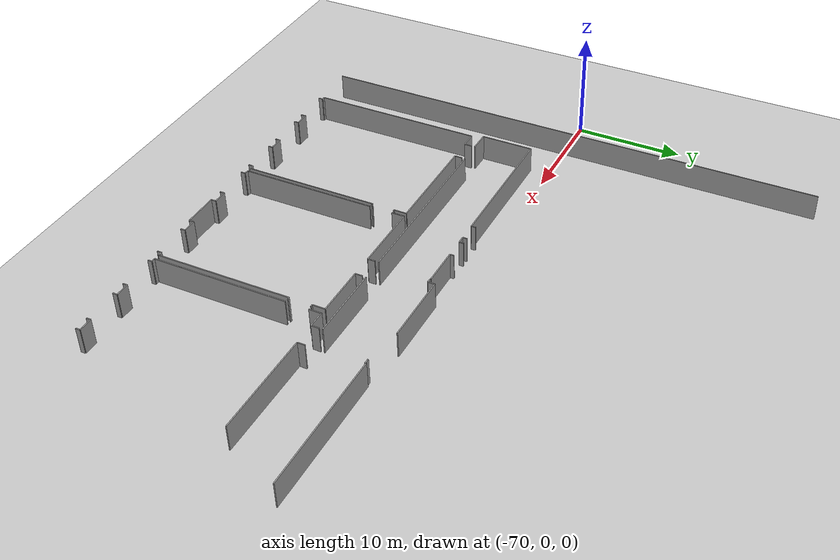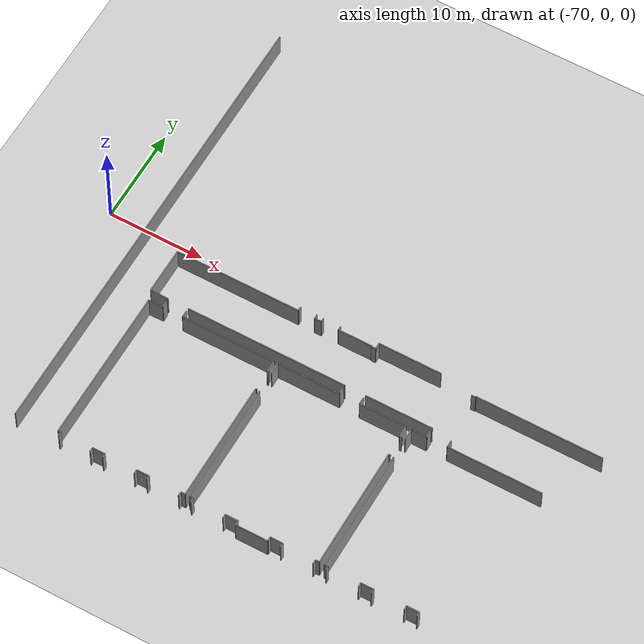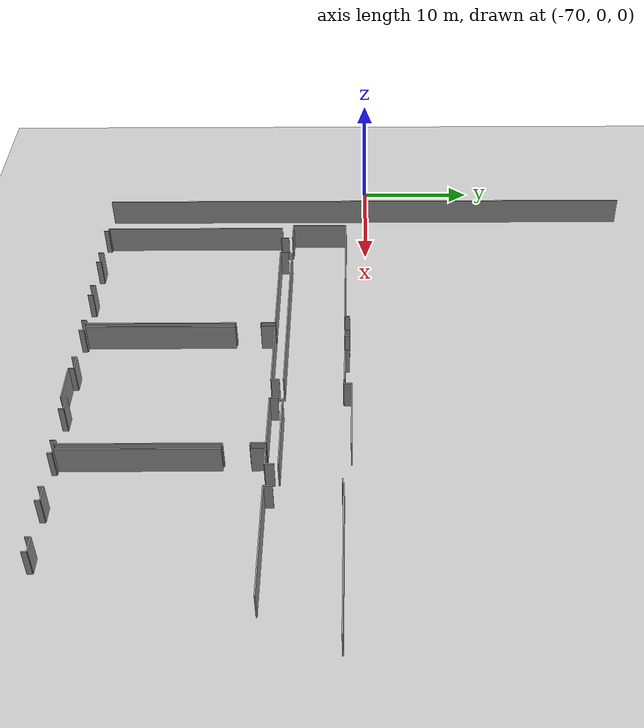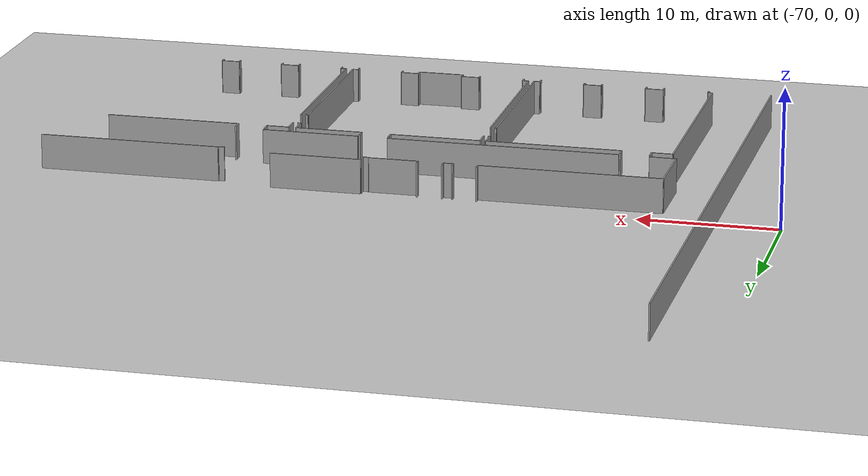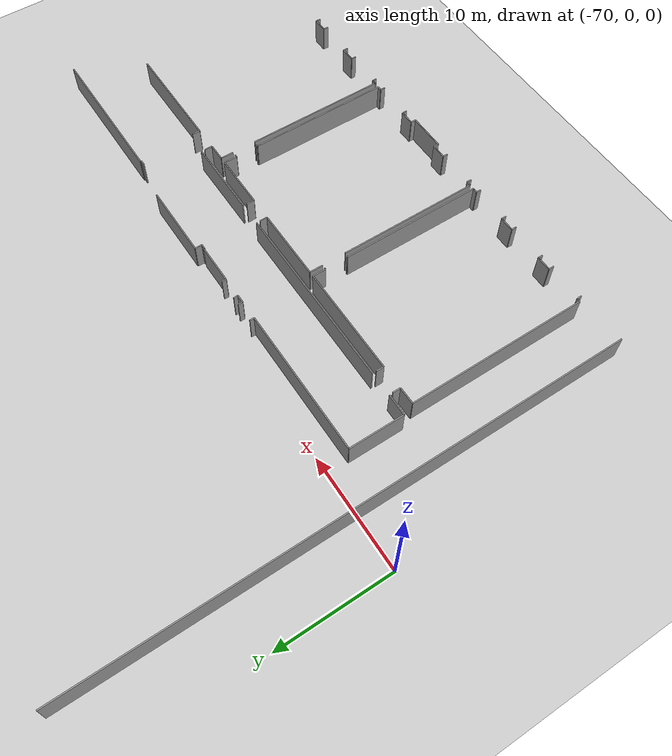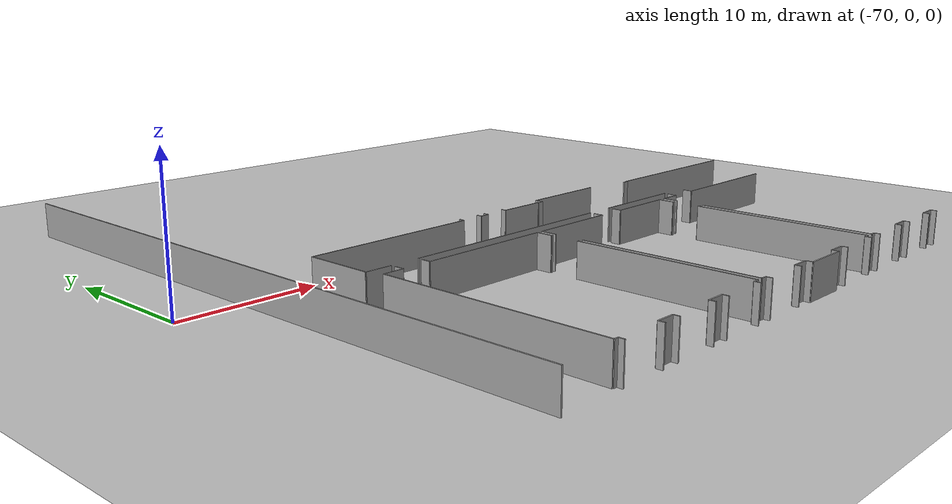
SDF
<sdf version="1.6">
 <world name="default">
  <model name="ground_plane">
   <static>1</static>
   <link name="link">
    <collision name="collision">
     <geometry><plane><normal>0 0 1</normal><size>100 100</size></plane></geometry>
     <surface><friction><ode><mu>100</mu><mu2>50</mu2></ode></friction></surface>
    </collision>
    <visual name="visual">
     <cast_shadows>0</cast_shadows>
     <geometry><plane><normal>0 0 1</normal><size>100 100</size></plane></geometry>
     <material>
      <script><uri>file://media/materials/scripts/gazebo.material</uri><name>Gazebo/Grey</name></script>
     </material>
    </visual>
   </link>
  </model>
  <model name="0510032196_A_40_1_104">
   <static>1</static>
   <link name="Wall_256">
    <collision name="Wall_256_Collision">
     <geometry><box><size>12.6980072187 0.1 2.5</size></box></geometry>
     <pose>6.34900360937 0 1.25 0 0 0</pose>
    </collision>
    <visual name="Wall_256_Visual">
     <pose>6.34900360937 0 1.25 0 0 0</pose>
     <geometry><box><size>12.6980072187 0.1 2.5</size></box></geometry>
     <material>
      <script><uri>file://media/materials/scripts/gazebo.material</uri><name>Gazebo/Grey</name></script>
      <ambient>1 1 1 1</ambient>
     </material>
    </visual>
    <pose>32.1738854151 -47.9350312643 0 0 0 1.57079632679</pose>
   </link>
   <link name="Wall_257">
    <collision name="Wall_257_Collision">
     <geometry><box><size>1.16033755274 0.1 2.5</size></box></geometry>
     <pose>0.580168776371 0 1.25 0 0 0</pose>
    </collision>
    <visual name="Wall_257_Visual">
     <pose>0.580168776371 0 1.25 0 0 0</pose>
     <geometry><box><size>1.16033755274 0.1 2.5</size></box></geometry>
     <material>
      <script><uri>file://media/materials/scripts/gazebo.material</uri><name>Gazebo/Grey</name></script>
      <ambient>1 1 1 1</ambient>
     </material>
    </visual>
    <pose>32.1738854151 -33.0599613644 0 0 0 1.57079632679</pose>
   </link>
   <link name="Wall_258">
    <collision name="Wall_258_Collision">
     <geometry><box><size>1.59625845153 0.1 2.5</size></box></geometry>
     <pose>0.798129225764 0 1.25 0 0 0</pose>
    </collision>
    <visual name="Wall_258_Visual">
     <pose>0.798129225764 0 1.25 0 0 0</pose>
     <geometry><box><size>1.59625845153 0.1 2.5</size></box></geometry>
     <material>
      <script><uri>file://media/materials/scripts/gazebo.material</uri><name>Gazebo/Grey</name></script>
      <ambient>1 1 1 1</ambient>
     </material>
    </visual>
    <pose>32.1738854151 -31.8996238117 0 0 0 0.0</pose>
   </link>
   <link name="Wall_259">
    <collision name="Wall_259_Collision">
     <geometry><box><size>0.729500279599 0.1 2.5</size></box></geometry>
     <pose>0.3647501398 0 1.25 0 0 0</pose>
    </collision>
    <visual name="Wall_259_Visual">
     <pose>0.3647501398 0 1.25 0 0 0</pose>
     <geometry><box><size>0.729500279599 0.1 2.5</size></box></geometry>
     <material>
      <script><uri>file://media/materials/scripts/gazebo.material</uri><name>Gazebo/Grey</name></script>
      <ambient>1 1 1 1</ambient>
     </material>
    </visual>
    <pose>33.7701438666 -31.8996238117 0 0 0 1.57079632679</pose>
   </link>
   <link name="Wall_260">
    <collision name="Wall_260_Collision">
     <geometry><box><size>0.708784505109 0.1 2.5</size></box></geometry>
     <pose>0.354392252555 0 1.25 0 0 0</pose>
    </collision>
    <visual name="Wall_260_Visual">
     <pose>0.354392252555 0 1.25 0 0 0</pose>
     <geometry><box><size>0.708784505109 0.1 2.5</size></box></geometry>
     <material>
      <script><uri>file://media/materials/scripts/gazebo.material</uri><name>Gazebo/Grey</name></script>
      <ambient>1 1 1 1</ambient>
     </material>
    </visual>
    <pose>35.892938844 -31.1701235321 0 0 0 -1.57079632679</pose>
   </link>
   <link name="Wall_261">
    <collision name="Wall_261_Collision">
     <geometry><box><size>9.74937725586 0.1 2.5</size></box></geometry>
     <pose>4.87468862793 0 1.25 0 0 0</pose>
    </collision>
    <visual name="Wall_261_Visual">
     <pose>4.87468862793 0 1.25 0 0 0</pose>
     <geometry><box><size>9.74937725586 0.1 2.5</size></box></geometry>
     <material>
      <script><uri>file://media/materials/scripts/gazebo.material</uri><name>Gazebo/Grey</name></script>
      <ambient>1 1 1 1</ambient>
     </material>
    </visual>
    <pose>35.892938844 -31.8789080372 0 0 0 0.0</pose>
   </link>
   <link name="Wall_268">
    <collision name="Wall_268_Collision">
     <geometry><box><size>0.429566366733 0.1 2.5</size></box></geometry>
     <pose>0.214783183366 0 1.25 0 0 0</pose>
    </collision>
    <visual name="Wall_268_Visual">
     <pose>0.214783183366 0 1.25 0 0 0</pose>
     <geometry><box><size>0.429566366733 0.1 2.5</size></box></geometry>
     <material>
      <script><uri>file://media/materials/scripts/gazebo.material</uri><name>Gazebo/Grey</name></script>
      <ambient>1 1 1 1</ambient>
     </material>
    </visual>
    <pose>41.8542524528 -48.3404504092 0 0 0 1.57079632679</pose>
   </link>
   <link name="Wall_269">
    <collision name="Wall_269_Collision">
     <geometry><box><size>1.30865233084 0.1 2.5</size></box></geometry>
     <pose>0.654326165421 0 1.25 0 0 0</pose>
    </collision>
    <visual name="Wall_269_Visual">
     <pose>0.654326165421 0 1.25 0 0 0</pose>
     <geometry><box><size>1.30865233084 0.1 2.5</size></box></geometry>
     <material>
      <script><uri>file://media/materials/scripts/gazebo.material</uri><name>Gazebo/Grey</name></script>
      <ambient>1 1 1 1</ambient>
     </material>
    </visual>
    <pose>41.8542524528 -47.9108840425 0 0 0 3.14159265359</pose>
   </link>
   <link name="Wall_270">
    <collision name="Wall_270_Collision">
     <geometry><box><size>0.429566366733 0.1 2.5</size></box></geometry>
     <pose>0.214783183366 0 1.25 0 0 0</pose>
    </collision>
    <visual name="Wall_270_Visual">
     <pose>0.214783183366 0 1.25 0 0 0</pose>
     <geometry><box><size>0.429566366733 0.1 2.5</size></box></geometry>
     <material>
      <script><uri>file://media/materials/scripts/gazebo.material</uri><name>Gazebo/Grey</name></script>
      <ambient>1 1 1 1</ambient>
     </material>
    </visual>
    <pose>40.545600122 -47.9108840425 0 0 0 -1.57079632679</pose>
   </link>
   <link name="Wall_271">
    <collision name="Wall_271_Collision">
     <geometry><box><size>0.429566366733 0.1 2.5</size></box></geometry>
     <pose>0.214783183366 0 1.25 0 0 0</pose>
    </collision>
    <visual name="Wall_271_Visual">
     <pose>0.214783183366 0 1.25 0 0 0</pose>
     <geometry><box><size>0.429566366733 0.1 2.5</size></box></geometry>
     <material>
      <script><uri>file://media/materials/scripts/gazebo.material</uri><name>Gazebo/Grey</name></script>
      <ambient>1 1 1 1</ambient>
     </material>
    </visual>
    <pose>37.2102333384 -48.3404504092 0 0 0 1.57079632679</pose>
   </link>
   <link name="Wall_272">
    <collision name="Wall_272_Collision">
     <geometry><box><size>1.31869249148 0.1 2.5</size></box></geometry>
     <pose>0.659346245742 0 1.25 0 0 0</pose>
    </collision>
    <visual name="Wall_272_Visual">
     <pose>0.659346245742 0 1.25 0 0 0</pose>
     <geometry><box><size>1.31869249148 0.1 2.5</size></box></geometry>
     <material>
      <script><uri>file://media/materials/scripts/gazebo.material</uri><name>Gazebo/Grey</name></script>
      <ambient>1 1 1 1</ambient>
     </material>
    </visual>
    <pose>37.2102333384 -47.9108840425 0 0 0 3.14159265359</pose>
   </link>
   <link name="Wall_273">
    <collision name="Wall_273_Collision">
     <geometry><box><size>0.425245284937 0.1 2.5</size></box></geometry>
     <pose>0.212622642469 0 1.25 0 0 0</pose>
    </collision>
    <visual name="Wall_273_Visual">
     <pose>0.212622642469 0 1.25 0 0 0</pose>
     <geometry><box><size>0.425245284937 0.1 2.5</size></box></geometry>
     <material>
      <script><uri>file://media/materials/scripts/gazebo.material</uri><name>Gazebo/Grey</name></script>
      <ambient>1 1 1 1</ambient>
     </material>
    </visual>
    <pose>35.8915408469 -47.9108840425 0 0 0 -1.57079632679</pose>
   </link>
   <link name="Wall_274">
    <collision name="Wall_274_Collision">
     <geometry><box><size>0.401352244421 0.1 2.5</size></box></geometry>
     <pose>0.20067612221 0 1.25 0 0 0</pose>
    </collision>
    <visual name="Wall_274_Visual">
     <pose>0.20067612221 0 1.25 0 0 0</pose>
     <geometry><box><size>0.401352244421 0.1 2.5</size></box></geometry>
     <material>
      <script><uri>file://media/materials/scripts/gazebo.material</uri><name>Gazebo/Grey</name></script>
      <ambient>1 1 1 1</ambient>
     </material>
    </visual>
    <pose>32.5565553353 -48.3361293274 0 0 0 1.57079632679</pose>
   </link>
   <link name="Wall_275">
    <collision name="Wall_275_Collision">
     <geometry><box><size>0.382670004605 0.1 2.5</size></box></geometry>
     <pose>0.191335002302 0 1.25 0 0 0</pose>
    </collision>
    <visual name="Wall_275_Visual">
     <pose>0.191335002302 0 1.25 0 0 0</pose>
     <geometry><box><size>0.382670004605 0.1 2.5</size></box></geometry>
     <material>
      <script><uri>file://media/materials/scripts/gazebo.material</uri><name>Gazebo/Grey</name></script>
      <ambient>1 1 1 1</ambient>
     </material>
    </visual>
    <pose>32.5565553353 -47.934777083 0 0 0 -3.14092842254</pose>
   </link>
   <link name="Wall_276">
    <collision name="Wall_276_Collision">
     <geometry><box><size>12.6448833308 0.1 2.5</size></box></geometry>
     <pose>6.3224416654 0 1.25 0 0 0</pose>
    </collision>
    <visual name="Wall_276_Visual">
     <pose>6.3224416654 0 1.25 0 0 0</pose>
     <geometry><box><size>12.6448833308 0.1 2.5</size></box></geometry>
     <material>
      <script><uri>file://media/materials/scripts/gazebo.material</uri><name>Gazebo/Grey</name></script>
      <ambient>1 1 1 1</ambient>
     </material>
    </visual>
    <pose>18.1434599156 -47.8798739261 0 0 0 1.57079632679</pose>
   </link>
   <link name="Wall_277">
    <collision name="Wall_277_Collision">
     <geometry><box><size>1.20456509583 0.1 2.5</size></box></geometry>
     <pose>0.602282547913 0 1.25 0 0 0</pose>
    </collision>
    <visual name="Wall_277_Visual">
     <pose>0.602282547913 0 1.25 0 0 0</pose>
     <geometry><box><size>1.20456509583 0.1 2.5</size></box></geometry>
     <material>
      <script><uri>file://media/materials/scripts/gazebo.material</uri><name>Gazebo/Grey</name></script>
      <ambient>1 1 1 1</ambient>
     </material>
    </visual>
    <pose>18.1434599156 -33.0710182502 0 0 0 1.57079632679</pose>
   </link>
   <link name="Wall_278">
    <collision name="Wall_278_Collision">
     <geometry><box><size>6.50462609933 0.1 2.5</size></box></geometry>
     <pose>3.25231304967 0 1.25 0 0 0</pose>
    </collision>
    <visual name="Wall_278_Visual">
     <pose>3.25231304967 0 1.25 0 0 0</pose>
     <geometry><box><size>6.50462609933 0.1 2.5</size></box></geometry>
     <material>
      <script><uri>file://media/materials/scripts/gazebo.material</uri><name>Gazebo/Grey</name></script>
      <ambient>1 1 1 1</ambient>
     </material>
    </visual>
    <pose>18.1434599156 -31.8664531544 0 0 0 0.0</pose>
   </link>
   <link name="Wall_279">
    <collision name="Wall_279_Collision">
     <geometry><box><size>0.674724213309 0.1 2.5</size></box></geometry>
     <pose>0.337362106654 0 1.25 0 0 0</pose>
    </collision>
    <visual name="Wall_279_Visual">
     <pose>0.337362106654 0 1.25 0 0 0</pose>
     <geometry><box><size>0.674724213309 0.1 2.5</size></box></geometry>
     <material>
      <script><uri>file://media/materials/scripts/gazebo.material</uri><name>Gazebo/Grey</name></script>
      <ambient>1 1 1 1</ambient>
     </material>
    </visual>
    <pose>24.6480860149 -31.8664531544 0 0 0 1.57079632679</pose>
   </link>
   <link name="Wall_280">
    <collision name="Wall_280_Collision">
     <geometry><box><size>0.694804534594 0.1 2.5</size></box></geometry>
     <pose>0.347402267297 0 1.25 0 0 0</pose>
    </collision>
    <visual name="Wall_280_Visual">
     <pose>0.347402267297 0 1.25 0 0 0</pose>
     <geometry><box><size>0.694804534594 0.1 2.5</size></box></geometry>
     <material>
      <script><uri>file://media/materials/scripts/gazebo.material</uri><name>Gazebo/Grey</name></script>
      <ambient>1 1 1 1</ambient>
     </material>
    </visual>
    <pose>26.7635097351 -31.1917289411 0 0 0 -1.57079632679</pose>
   </link>
   <link name="Wall_281">
    <collision name="Wall_281_Collision">
     <geometry><box><size>4.84342433023 0.1 2.5</size></box></geometry>
     <pose>2.42171216512 0 1.25 0 0 0</pose>
    </collision>
    <visual name="Wall_281_Visual">
     <pose>2.42171216512 0 1.25 0 0 0</pose>
     <geometry><box><size>4.84342433023 0.1 2.5</size></box></geometry>
     <material>
      <script><uri>file://media/materials/scripts/gazebo.material</uri><name>Gazebo/Grey</name></script>
      <ambient>1 1 1 1</ambient>
     </material>
    </visual>
    <pose>26.7635097351 -31.8865334757 0 0 0 0.0</pose>
   </link>
   <link name="Wall_282">
    <collision name="Wall_282_Collision">
     <geometry><box><size>1.19033094403 0.1 2.5</size></box></geometry>
     <pose>0.595165472015 0 1.25 0 0 0</pose>
    </collision>
    <visual name="Wall_282_Visual">
     <pose>0.595165472015 0 1.25 0 0 0</pose>
     <geometry><box><size>1.19033094403 0.1 2.5</size></box></geometry>
     <material>
      <script><uri>file://media/materials/scripts/gazebo.material</uri><name>Gazebo/Grey</name></script>
      <ambient>1 1 1 1</ambient>
     </material>
    </visual>
    <pose>31.6069340654 -31.8865334757 0 0 0 -1.57079632679</pose>
   </link>
   <link name="Wall_283">
    <collision name="Wall_283_Collision">
     <geometry><box><size>0.221900259265 0.1 2.5</size></box></geometry>
     <pose>0.110950129632 0 1.25 0 0 0</pose>
    </collision>
    <visual name="Wall_283_Visual">
     <pose>0.110950129632 0 1.25 0 0 0</pose>
     <geometry><box><size>0.221900259265 0.1 2.5</size></box></geometry>
     <material>
      <script><uri>file://media/materials/scripts/gazebo.material</uri><name>Gazebo/Grey</name></script>
      <ambient>1 1 1 1</ambient>
     </material>
    </visual>
    <pose>31.6069340654 -33.0768644197 0 0 0 0.0</pose>
   </link>
   <link name="Wall_284">
    <collision name="Wall_284_Collision">
     <geometry><box><size>0.188856692593 0.1 2.5</size></box></geometry>
     <pose>0.0944283462966 0 1.25 0 0 0</pose>
    </collision>
    <visual name="Wall_284_Visual">
     <pose>0.0944283462966 0 1.25 0 0 0</pose>
     <geometry><box><size>0.188856692593 0.1 2.5</size></box></geometry>
     <material>
      <script><uri>file://media/materials/scripts/gazebo.material</uri><name>Gazebo/Grey</name></script>
      <ambient>1 1 1 1</ambient>
     </material>
    </visual>
    <pose>31.8288343246 -35.2060139291 0 0 0 3.14159265359</pose>
   </link>
   <link name="Wall_285">
    <collision name="Wall_285_Collision">
     <geometry><box><size>12.6995323064 0.1 2.5</size></box></geometry>
     <pose>6.34976615322 0 1.25 0 0 0</pose>
    </collision>
    <visual name="Wall_285_Visual">
     <pose>6.34976615322 0 1.25 0 0 0</pose>
     <geometry><box><size>12.6995323064 0.1 2.5</size></box></geometry>
     <material>
      <script><uri>file://media/materials/scripts/gazebo.material</uri><name>Gazebo/Grey</name></script>
      <ambient>1 1 1 1</ambient>
     </material>
    </visual>
    <pose>31.639977632 -35.2060139291 0 0 0 -1.57079632679</pose>
   </link>
   <link name="Wall_286">
    <collision name="Wall_286_Collision">
     <geometry><box><size>0.396522800061 0.1 2.5</size></box></geometry>
     <pose>0.19826140003 0 1.25 0 0 0</pose>
    </collision>
    <visual name="Wall_286_Visual">
     <pose>0.19826140003 0 1.25 0 0 0</pose>
     <geometry><box><size>0.396522800061 0.1 2.5</size></box></geometry>
     <material>
      <script><uri>file://media/materials/scripts/gazebo.material</uri><name>Gazebo/Grey</name></script>
      <ambient>1 1 1 1</ambient>
     </material>
    </visual>
    <pose>31.639977632 -47.9055462356 0 0 0 3.14159265359</pose>
   </link>
   <link name="Wall_287">
    <collision name="Wall_287_Collision">
     <geometry><box><size>0.435920898785 0.1 2.5</size></box></geometry>
     <pose>0.217960449393 0 1.25 0 0 0</pose>
    </collision>
    <visual name="Wall_287_Visual">
     <pose>0.217960449393 0 1.25 0 0 0</pose>
     <geometry><box><size>0.435920898785 0.1 2.5</size></box></geometry>
     <material>
      <script><uri>file://media/materials/scripts/gazebo.material</uri><name>Gazebo/Grey</name></script>
      <ambient>1 1 1 1</ambient>
     </material>
    </visual>
    <pose>31.243454832 -47.9055462356 0 0 0 -1.57079632679</pose>
   </link>
   <link name="Wall_288">
    <collision name="Wall_288_Collision">
     <geometry><box><size>0.433760357887 0.1 2.5</size></box></geometry>
     <pose>0.216880178944 0 1.25 0 0 0</pose>
    </collision>
    <visual name="Wall_288_Visual">
     <pose>0.216880178944 0 1.25 0 0 0</pose>
     <geometry><box><size>0.433760357887 0.1 2.5</size></box></geometry>
     <material>
      <script><uri>file://media/materials/scripts/gazebo.material</uri><name>Gazebo/Grey</name></script>
      <ambient>1 1 1 1</ambient>
     </material>
    </visual>
    <pose>27.8831782828 -48.3414671344 0 0 0 1.57079632679</pose>
   </link>
   <link name="Wall_289">
    <collision name="Wall_289_Collision">
     <geometry><box><size>1.29340145392 0.1 2.5</size></box></geometry>
     <pose>0.646700726958 0 1.25 0 0 0</pose>
    </collision>
    <visual name="Wall_289_Visual">
     <pose>0.646700726958 0 1.25 0 0 0</pose>
     <geometry><box><size>1.29340145392 0.1 2.5</size></box></geometry>
     <material>
      <script><uri>file://media/materials/scripts/gazebo.material</uri><name>Gazebo/Grey</name></script>
      <ambient>1 1 1 1</ambient>
     </material>
    </visual>
    <pose>27.8831782828 -47.9077067765 0 0 0 3.14159265359</pose>
   </link>
   <link name="Wall_290">
    <collision name="Wall_290_Collision">
     <geometry><box><size>0.457780489045 0.1 2.5</size></box></geometry>
     <pose>0.228890244522 0 1.25 0 0 0</pose>
    </collision>
    <visual name="Wall_290_Visual">
     <pose>0.228890244522 0 1.25 0 0 0</pose>
     <geometry><box><size>0.457780489045 0.1 2.5</size></box></geometry>
     <material>
      <script><uri>file://media/materials/scripts/gazebo.material</uri><name>Gazebo/Grey</name></script>
      <ambient>1 1 1 1</ambient>
     </material>
    </visual>
    <pose>26.5897768288 -47.9077067765 0 0 0 -1.57079632679</pose>
   </link>
   <link name="Wall_291">
    <collision name="Wall_291_Collision">
     <geometry><box><size>3.34642366936 0.1 2.5</size></box></geometry>
     <pose>1.67321183468 0 1.25 0 0 0</pose>
    </collision>
    <visual name="Wall_291_Visual">
     <pose>1.67321183468 0 1.25 0 0 0</pose>
     <geometry><box><size>3.34642366936 0.1 2.5</size></box></geometry>
     <material>
      <script><uri>file://media/materials/scripts/gazebo.material</uri><name>Gazebo/Grey</name></script>
      <ambient>1 1 1 1</ambient>
     </material>
    </visual>
    <pose>26.5897768288 -48.3654872655 0 0 0 3.14159265359</pose>
   </link>
   <link name="Wall_292">
    <collision name="Wall_292_Collision">
     <geometry><box><size>0.458288851609 0.1 2.5</size></box></geometry>
     <pose>0.229144425804 0 1.25 0 0 0</pose>
    </collision>
    <visual name="Wall_292_Visual">
     <pose>0.229144425804 0 1.25 0 0 0</pose>
     <geometry><box><size>0.458288851609 0.1 2.5</size></box></geometry>
     <material>
      <script><uri>file://media/materials/scripts/gazebo.material</uri><name>Gazebo/Grey</name></script>
      <ambient>1 1 1 1</ambient>
     </material>
    </visual>
    <pose>23.2433531595 -48.3654872655 0 0 0 1.57079632679</pose>
   </link>
   <link name="Wall_293">
    <collision name="Wall_293_Collision">
     <geometry><box><size>1.32593665802 0.1 2.5</size></box></geometry>
     <pose>0.662968329012 0 1.25 0 0 0</pose>
    </collision>
    <visual name="Wall_293_Visual">
     <pose>0.662968329012 0 1.25 0 0 0</pose>
     <geometry><box><size>1.32593665802 0.1 2.5</size></box></geometry>
     <material>
      <script><uri>file://media/materials/scripts/gazebo.material</uri><name>Gazebo/Grey</name></script>
      <ambient>1 1 1 1</ambient>
     </material>
    </visual>
    <pose>23.2433531595 -47.9071984139 0 0 0 3.14159265359</pose>
   </link>
   <link name="Wall_294">
    <collision name="Wall_294_Collision">
     <geometry><box><size>0.429312185451 0.1 2.5</size></box></geometry>
     <pose>0.214656092725 0 1.25 0 0 0</pose>
    </collision>
    <visual name="Wall_294_Visual">
     <pose>0.214656092725 0 1.25 0 0 0</pose>
     <geometry><box><size>0.429312185451 0.1 2.5</size></box></geometry>
     <material>
      <script><uri>file://media/materials/scripts/gazebo.material</uri><name>Gazebo/Grey</name></script>
      <ambient>1 1 1 1</ambient>
     </material>
    </visual>
    <pose>21.9174165014 -47.9071984139 0 0 0 -1.57079632679</pose>
   </link>
   <link name="Wall_295">
    <collision name="Wall_295_Collision">
     <geometry><box><size>0.433506176605 0.1 2.5</size></box></geometry>
     <pose>0.216753088303 0 1.25 0 0 0</pose>
    </collision>
    <visual name="Wall_295_Visual">
     <pose>0.216753088303 0 1.25 0 0 0</pose>
     <geometry><box><size>0.433506176605 0.1 2.5</size></box></geometry>
     <material>
      <script><uri>file://media/materials/scripts/gazebo.material</uri><name>Gazebo/Grey</name></script>
      <ambient>1 1 1 1</ambient>
     </material>
    </visual>
    <pose>18.5748055513 -48.3365105994 0 0 0 1.57079632679</pose>
   </link>
   <link name="Wall_296">
    <collision name="Wall_296_Collision">
     <geometry><box><size>0.43196536588 0.1 2.5</size></box></geometry>
     <pose>0.21598268294 0 1.25 0 0 0</pose>
    </collision>
    <visual name="Wall_296_Visual">
     <pose>0.21598268294 0 1.25 0 0 0</pose>
     <geometry><box><size>0.43196536588 0.1 2.5</size></box></geometry>
     <material>
      <script><uri>file://media/materials/scripts/gazebo.material</uri><name>Gazebo/Grey</name></script>
      <ambient>1 1 1 1</ambient>
     </material>
    </visual>
    <pose>18.5748055513 -47.9030044228 0 0 0 3.08801992199</pose>
   </link>
   <link name="Wall_297">
    <collision name="Wall_297_Collision">
     <geometry><box><size>16.0772202735 0.1 2.5</size></box></geometry>
     <pose>8.03861013675 0 1.25 0 0 0</pose>
    </collision>
    <visual name="Wall_297_Visual">
     <pose>8.03861013675 0 1.25 0 0 0</pose>
     <geometry><box><size>16.0772202735 0.1 2.5</size></box></geometry>
     <material>
      <script><uri>file://media/materials/scripts/gazebo.material</uri><name>Gazebo/Grey</name></script>
      <ambient>1 1 1 1</ambient>
     </material>
    </visual>
    <pose>4.3215901581 -47.9552386762 0 0 0 1.57079632679</pose>
   </link>
   <link name="Wall_298">
    <collision name="Wall_298_Collision">
     <geometry><box><size>1.51453916934 0.1 2.5</size></box></geometry>
     <pose>0.757269584668 0 1.25 0 0 0</pose>
    </collision>
    <visual name="Wall_298_Visual">
     <pose>0.757269584668 0 1.25 0 0 0</pose>
     <geometry><box><size>1.51453916934 0.1 2.5</size></box></geometry>
     <material>
      <script><uri>file://media/materials/scripts/gazebo.material</uri><name>Gazebo/Grey</name></script>
      <ambient>1 1 1 1</ambient>
     </material>
    </visual>
    <pose>4.3215901581 -31.8780184027 0 0 0 0.0</pose>
   </link>
   <link name="Wall_299">
    <collision name="Wall_299_Collision">
     <geometry><box><size>0.698998525749 0.1 2.5</size></box></geometry>
     <pose>0.349499262874 0 1.25 0 0 0</pose>
    </collision>
    <visual name="Wall_299_Visual">
     <pose>0.349499262874 0 1.25 0 0 0</pose>
     <geometry><box><size>0.698998525749 0.1 2.5</size></box></geometry>
     <material>
      <script><uri>file://media/materials/scripts/gazebo.material</uri><name>Gazebo/Grey</name></script>
      <ambient>1 1 1 1</ambient>
     </material>
    </visual>
    <pose>5.83612932744 -31.8780184027 0 0 0 1.57079632679</pose>
   </link>
   <link name="Wall_300">
    <collision name="Wall_300_Collision">
     <geometry><box><size>0.689720908952 0.1 2.5</size></box></geometry>
     <pose>0.344860454476 0 1.25 0 0 0</pose>
    </collision>
    <visual name="Wall_300_Visual">
     <pose>0.344860454476 0 1.25 0 0 0</pose>
     <geometry><box><size>0.689720908952 0.1 2.5</size></box></geometry>
     <material>
      <script><uri>file://media/materials/scripts/gazebo.material</uri><name>Gazebo/Grey</name></script>
      <ambient>1 1 1 1</ambient>
     </material>
    </visual>
    <pose>7.96553301815 -31.179019877 0 0 0 -1.57079632679</pose>
   </link>
   <link name="Wall_301">
    <collision name="Wall_301_Collision">
     <geometry><box><size>9.74429363022 0.1 2.5</size></box></geometry>
     <pose>4.87214681511 0 1.25 0 0 0</pose>
    </collision>
    <visual name="Wall_301_Visual">
     <pose>4.87214681511 0 1.25 0 0 0</pose>
     <geometry><box><size>9.74429363022 0.1 2.5</size></box></geometry>
     <material>
      <script><uri>file://media/materials/scripts/gazebo.material</uri><name>Gazebo/Grey</name></script>
      <ambient>1 1 1 1</ambient>
     </material>
    </visual>
    <pose>7.96553301815 -31.8687407859 0 0 0 0.0</pose>
   </link>
   <link name="Wall_302">
    <collision name="Wall_302_Collision">
     <geometry><box><size>1.197066748 0.1 2.5</size></box></geometry>
     <pose>0.598533374002 0 1.25 0 0 0</pose>
    </collision>
    <visual name="Wall_302_Visual">
     <pose>0.598533374002 0 1.25 0 0 0</pose>
     <geometry><box><size>1.197066748 0.1 2.5</size></box></geometry>
     <material>
      <script><uri>file://media/materials/scripts/gazebo.material</uri><name>Gazebo/Grey</name></script>
      <ambient>1 1 1 1</ambient>
     </material>
    </visual>
    <pose>17.7098266484 -31.8687407859 0 0 0 -1.57079632679</pose>
   </link>
   <link name="Wall_303">
    <collision name="Wall_303_Collision">
     <geometry><box><size>0.127090641045 0.1 2.5</size></box></geometry>
     <pose>0.0635453205226 0 1.25 0 0 0</pose>
    </collision>
    <visual name="Wall_303_Visual">
     <pose>0.0635453205226 0 1.25 0 0 0</pose>
     <geometry><box><size>0.127090641045 0.1 2.5</size></box></geometry>
     <material>
      <script><uri>file://media/materials/scripts/gazebo.material</uri><name>Gazebo/Grey</name></script>
      <ambient>1 1 1 1</ambient>
     </material>
    </visual>
    <pose>17.7098266484 -33.0658075339 0 0 0 0.0</pose>
   </link>
   <link name="Wall_304">
    <collision name="Wall_304_Collision">
     <geometry><box><size>0.118829749377 0.1 2.5</size></box></geometry>
     <pose>0.0594148746886 0 1.25 0 0 0</pose>
    </collision>
    <visual name="Wall_304_Visual">
     <pose>0.0594148746886 0 1.25 0 0 0</pose>
     <geometry><box><size>0.118829749377 0.1 2.5</size></box></geometry>
     <material>
      <script><uri>file://media/materials/scripts/gazebo.material</uri><name>Gazebo/Grey</name></script>
      <ambient>1 1 1 1</ambient>
     </material>
    </visual>
    <pose>17.8369172894 -35.1990239439 0 0 0 3.14159265359</pose>
   </link>
   <link name="Wall_305">
    <collision name="Wall_305_Collision">
     <geometry><box><size>12.701819938 0.1 2.5</size></box></geometry>
     <pose>6.35090996899 0 1.25 0 0 0</pose>
    </collision>
    <visual name="Wall_305_Visual">
     <pose>6.35090996899 0 1.25 0 0 0</pose>
     <geometry><box><size>12.701819938 0.1 2.5</size></box></geometry>
     <material>
      <script><uri>file://media/materials/scripts/gazebo.material</uri><name>Gazebo/Grey</name></script>
      <ambient>1 1 1 1</ambient>
     </material>
    </visual>
    <pose>17.71808754 -35.1990239439 0 0 0 -1.57079632679</pose>
   </link>
   <link name="Wall_306">
    <collision name="Wall_306_Collision">
     <geometry><box><size>0.436175080067 0.1 2.5</size></box></geometry>
     <pose>0.218087540034 0 1.25 0 0 0</pose>
    </collision>
    <visual name="Wall_306_Visual">
     <pose>0.218087540034 0 1.25 0 0 0</pose>
     <geometry><box><size>0.436175080067 0.1 2.5</size></box></geometry>
     <material>
      <script><uri>file://media/materials/scripts/gazebo.material</uri><name>Gazebo/Grey</name></script>
      <ambient>1 1 1 1</ambient>
     </material>
    </visual>
    <pose>17.71808754 -47.9008438819 0 0 0 3.14159265359</pose>
   </link>
   <link name="Wall_307">
    <collision name="Wall_307_Collision">
     <geometry><box><size>0.439606527375 0.1 2.5</size></box></geometry>
     <pose>0.219803263688 0 1.25 0 0 0</pose>
    </collision>
    <visual name="Wall_307_Visual">
     <pose>0.219803263688 0 1.25 0 0 0</pose>
     <geometry><box><size>0.439606527375 0.1 2.5</size></box></geometry>
     <material>
      <script><uri>file://media/materials/scripts/gazebo.material</uri><name>Gazebo/Grey</name></script>
      <ambient>1 1 1 1</ambient>
     </material>
    </visual>
    <pose>17.28191246 -47.9008438819 0 0 0 -1.57079632679</pose>
   </link>
   <link name="Wall_308">
    <collision name="Wall_308_Collision">
     <geometry><box><size>0.428549641604 0.1 2.5</size></box></geometry>
     <pose>0.214274820802 0 1.25 0 0 0</pose>
    </collision>
    <visual name="Wall_308_Visual">
     <pose>0.214274820802 0 1.25 0 0 0</pose>
     <geometry><box><size>0.428549641604 0.1 2.5</size></box></geometry>
     <material>
      <script><uri>file://media/materials/scripts/gazebo.material</uri><name>Gazebo/Grey</name></script>
      <ambient>1 1 1 1</ambient>
     </material>
    </visual>
    <pose>13.9413349601 -48.3404504092 0 0 0 1.57079632679</pose>
   </link>
   <link name="Wall_309">
    <collision name="Wall_309_Collision">
     <geometry><box><size>1.31322759392 0.1 2.5</size></box></geometry>
     <pose>0.65661379696 0 1.25 0 0 0</pose>
    </collision>
    <visual name="Wall_309_Visual">
     <pose>0.65661379696 0 1.25 0 0 0</pose>
     <geometry><box><size>1.31322759392 0.1 2.5</size></box></geometry>
     <material>
      <script><uri>file://media/materials/scripts/gazebo.material</uri><name>Gazebo/Grey</name></script>
      <ambient>1 1 1 1</ambient>
     </material>
    </visual>
    <pose>13.9413349601 -47.9119007676 0 0 0 3.14159265359</pose>
   </link>
   <link name="Wall_310">
    <collision name="Wall_310_Collision">
     <geometry><box><size>0.444944334299 0.1 2.5</size></box></geometry>
     <pose>0.22247216715 0 1.25 0 0 0</pose>
    </collision>
    <visual name="Wall_310_Visual">
     <pose>0.22247216715 0 1.25 0 0 0</pose>
     <geometry><box><size>0.444944334299 0.1 2.5</size></box></geometry>
     <material>
      <script><uri>file://media/materials/scripts/gazebo.material</uri><name>Gazebo/Grey</name></script>
      <ambient>1 1 1 1</ambient>
     </material>
    </visual>
    <pose>12.6281073662 -47.9119007676 0 0 0 -1.57079632679</pose>
   </link>
   <link name="Wall_311">
    <collision name="Wall_311_Collision">
     <geometry><box><size>0.439479436734 0.1 2.5</size></box></geometry>
     <pose>0.219739718367 0 1.25 0 0 0</pose>
    </collision>
    <visual name="Wall_311_Visual">
     <pose>0.219739718367 0 1.25 0 0 0</pose>
     <geometry><box><size>0.439479436734 0.1 2.5</size></box></geometry>
     <material>
      <script><uri>file://media/materials/scripts/gazebo.material</uri><name>Gazebo/Grey</name></script>
      <ambient>1 1 1 1</ambient>
     </material>
    </visual>
    <pose>9.2875298663 -48.3568451019 0 0 0 1.57079632679</pose>
   </link>
   <link name="Wall_312">
    <collision name="Wall_312_Collision">
     <geometry><box><size>1.31869249148 0.1 2.5</size></box></geometry>
     <pose>0.659346245742 0 1.25 0 0 0</pose>
    </collision>
    <visual name="Wall_312_Visual">
     <pose>0.659346245742 0 1.25 0 0 0</pose>
     <geometry><box><size>1.31869249148 0.1 2.5</size></box></geometry>
     <material>
      <script><uri>file://media/materials/scripts/gazebo.material</uri><name>Gazebo/Grey</name></script>
      <ambient>1 1 1 1</ambient>
     </material>
    </visual>
    <pose>9.2875298663 -47.9173656652 0 0 0 3.14159265359</pose>
   </link>
   <link name="Wall_313">
    <collision name="Wall_313_Collision">
     <geometry><box><size>0.450536322505 0.1 2.5</size></box></geometry>
     <pose>0.225268161253 0 1.25 0 0 0</pose>
    </collision>
    <visual name="Wall_313_Visual">
     <pose>0.225268161253 0 1.25 0 0 0</pose>
     <geometry><box><size>0.450536322505 0.1 2.5</size></box></geometry>
     <material>
      <script><uri>file://media/materials/scripts/gazebo.material</uri><name>Gazebo/Grey</name></script>
      <ambient>1 1 1 1</ambient>
     </material>
    </visual>
    <pose>7.96883737482 -47.9173656652 0 0 0 -1.57079632679</pose>
   </link>
   <link name="Wall_314">
    <collision name="Wall_314_Collision">
     <geometry><box><size>0.395633165574 0.1 2.5</size></box></geometry>
     <pose>0.197816582787 0 1.25 0 0 0</pose>
    </collision>
    <visual name="Wall_314_Visual">
     <pose>0.197816582787 0 1.25 0 0 0</pose>
     <geometry><box><size>0.395633165574 0.1 2.5</size></box></geometry>
     <material>
      <script><uri>file://media/materials/scripts/gazebo.material</uri><name>Gazebo/Grey</name></script>
      <ambient>1 1 1 1</ambient>
     </material>
    </visual>
    <pose>4.63372477251 -48.3679019877 0 0 0 1.57079632679</pose>
   </link>
   <link name="Wall_315">
    <collision name="Wall_315_Collision">
     <geometry><box><size>0.312598853773 0.1 2.5</size></box></geometry>
     <pose>0.156299426887 0 1.25 0 0 0</pose>
    </collision>
    <visual name="Wall_315_Visual">
     <pose>0.156299426887 0 1.25 0 0 0</pose>
     <geometry><box><size>0.312598853773 0.1 2.5</size></box></geometry>
     <material>
      <script><uri>file://media/materials/scripts/gazebo.material</uri><name>Gazebo/Grey</name></script>
      <ambient>1 1 1 1</ambient>
     </material>
    </visual>
    <pose>4.63372477251 -47.9722688221 0 0 0 3.08708643524</pose>
   </link>
   <link name="Wall_351">
    <collision name="Wall_351_Collision">
     <geometry><box><size>4.85727721011 0.1 2.5</size></box></geometry>
     <pose>2.42863860505 0 1.25 0 0 0</pose>
    </collision>
    <visual name="Wall_351_Visual">
     <pose>2.42863860505 0 1.25 0 0 0</pose>
     <geometry><box><size>4.85727721011 0.1 2.5</size></box></geometry>
     <material>
      <script><uri>file://media/materials/scripts/gazebo.material</uri><name>Gazebo/Grey</name></script>
      <ambient>1 1 1 1</ambient>
     </material>
    </visual>
    <pose>3.91337501906 -30.8370189619 0 0 0 1.57079632679</pose>
   </link>
   <link name="Wall_352">
    <collision name="Wall_352_Collision">
     <geometry><box><size>13.027553251 0.1 2.5</size></box></geometry>
     <pose>6.51377662549 0 1.25 0 0 0</pose>
    </collision>
    <visual name="Wall_352_Visual">
     <pose>6.51377662549 0 1.25 0 0 0</pose>
     <geometry><box><size>13.027553251 0.1 2.5</size></box></geometry>
     <material>
      <script><uri>file://media/materials/scripts/gazebo.material</uri><name>Gazebo/Grey</name></script>
      <ambient>1 1 1 1</ambient>
     </material>
    </visual>
    <pose>3.91337501906 -25.9797417518 0 0 0 0.0</pose>
   </link>
   <link name="Wall_353">
    <collision name="Wall_353_Collision">
     <geometry><box><size>0.415586396218 0.1 2.5</size></box></geometry>
     <pose>0.207793198109 0 1.25 0 0 0</pose>
    </collision>
    <visual name="Wall_353_Visual">
     <pose>0.207793198109 0 1.25 0 0 0</pose>
     <geometry><box><size>0.415586396218 0.1 2.5</size></box></geometry>
     <material>
      <script><uri>file://media/materials/scripts/gazebo.material</uri><name>Gazebo/Grey</name></script>
      <ambient>1 1 1 1</ambient>
     </material>
    </visual>
    <pose>16.94092827 -25.9797417518 0 0 0 1.57079632679</pose>
   </link>
   <link name="Wall_354">
    <collision name="Wall_354_Collision">
     <geometry><box><size>0.408215139037 0.1 2.5</size></box></geometry>
     <pose>0.204107569519 0 1.25 0 0 0</pose>
    </collision>
    <visual name="Wall_354_Visual">
     <pose>0.204107569519 0 1.25 0 0 0</pose>
     <geometry><box><size>0.408215139037 0.1 2.5</size></box></geometry>
     <material>
      <script><uri>file://media/materials/scripts/gazebo.material</uri><name>Gazebo/Grey</name></script>
      <ambient>1 1 1 1</ambient>
     </material>
    </visual>
    <pose>18.6720298917 -25.5641553556 0 0 0 -1.57079632679</pose>
   </link>
   <link name="Wall_355">
    <collision name="Wall_355_Collision">
     <geometry><box><size>0.703319607544 0.1 2.5</size></box></geometry>
     <pose>0.351659803772 0 1.25 0 0 0</pose>
    </collision>
    <visual name="Wall_355_Visual">
     <pose>0.351659803772 0 1.25 0 0 0</pose>
     <geometry><box><size>0.703319607544 0.1 2.5</size></box></geometry>
     <material>
      <script><uri>file://media/materials/scripts/gazebo.material</uri><name>Gazebo/Grey</name></script>
      <ambient>1 1 1 1</ambient>
     </material>
    </visual>
    <pose>18.6720298917 -25.9723704946 0 0 0 0.0</pose>
   </link>
   <link name="Wall_356">
    <collision name="Wall_356_Collision">
     <geometry><box><size>0.401098063139 0.1 2.5</size></box></geometry>
     <pose>0.200549031569 0 1.25 0 0 0</pose>
    </collision>
    <visual name="Wall_356_Visual">
     <pose>0.200549031569 0 1.25 0 0 0</pose>
     <geometry><box><size>0.401098063139 0.1 2.5</size></box></geometry>
     <material>
      <script><uri>file://media/materials/scripts/gazebo.material</uri><name>Gazebo/Grey</name></script>
      <ambient>1 1 1 1</ambient>
     </material>
    </visual>
    <pose>19.3753494993 -25.9723704946 0 0 0 1.57079632679</pose>
   </link>
   <link name="Wall_357">
    <collision name="Wall_357_Collision">
     <geometry><box><size>0.389532814804 0.1 2.5</size></box></geometry>
     <pose>0.194766407402 0 1.25 0 0 0</pose>
    </collision>
    <visual name="Wall_357_Visual">
     <pose>0.194766407402 0 1.25 0 0 0</pose>
     <geometry><box><size>0.389532814804 0.1 2.5</size></box></geometry>
     <material>
      <script><uri>file://media/materials/scripts/gazebo.material</uri><name>Gazebo/Grey</name></script>
      <ambient>1 1 1 1</ambient>
     </material>
    </visual>
    <pose>21.1904580347 -25.5712724315 0 0 0 -1.57079632679</pose>
   </link>
   <link name="Wall_358">
    <collision name="Wall_358_Collision">
     <geometry><box><size>3.53210309593 0.1 2.5</size></box></geometry>
     <pose>1.76605154796 0 1.25 0 0 0</pose>
    </collision>
    <visual name="Wall_358_Visual">
     <pose>1.76605154796 0 1.25 0 0 0</pose>
     <geometry><box><size>3.53210309593 0.1 2.5</size></box></geometry>
     <material>
      <script><uri>file://media/materials/scripts/gazebo.material</uri><name>Gazebo/Grey</name></script>
      <ambient>1 1 1 1</ambient>
     </material>
    </visual>
    <pose>21.1904580347 -25.9608052463 0 0 0 0.0</pose>
   </link>
   <link name="Wall_359">
    <collision name="Wall_359_Collision">
     <geometry><box><size>0.0569366071882 0.1 2.5</size></box></geometry>
     <pose>0.0284683035941 0 1.25 0 0 0</pose>
    </collision>
    <visual name="Wall_359_Visual">
     <pose>0.0284683035941 0 1.25 0 0 0</pose>
     <geometry><box><size>0.0569366071882 0.1 2.5</size></box></geometry>
     <material>
      <script><uri>file://media/materials/scripts/gazebo.material</uri><name>Gazebo/Grey</name></script>
      <ambient>1 1 1 1</ambient>
     </material>
    </visual>
    <pose>24.7225611306 -25.9608052463 0 0 0 -1.57079632679</pose>
   </link>
   <link name="Wall_360">
    <collision name="Wall_360_Collision">
     <geometry><box><size>0.442275430837 0.1 2.5</size></box></geometry>
     <pose>0.221137715419 0 1.25 0 0 0</pose>
    </collision>
    <visual name="Wall_360_Visual">
     <pose>0.221137715419 0 1.25 0 0 0</pose>
     <geometry><box><size>0.442275430837 0.1 2.5</size></box></geometry>
     <material>
      <script><uri>file://media/materials/scripts/gazebo.material</uri><name>Gazebo/Grey</name></script>
      <ambient>1 1 1 1</ambient>
     </material>
    </visual>
    <pose>24.7225611306 -26.0177418535 0 0 0 0.0</pose>
   </link>
   <link name="Wall_361">
    <collision name="Wall_361_Collision">
     <geometry><box><size>0.629098673174 0.1 2.5</size></box></geometry>
     <pose>0.314549336587 0 1.25 0 0 0</pose>
    </collision>
    <visual name="Wall_361_Visual">
     <pose>0.314549336587 0 1.25 0 0 0</pose>
     <geometry><box><size>0.629098673174 0.1 2.5</size></box></geometry>
     <material>
      <script><uri>file://media/materials/scripts/gazebo.material</uri><name>Gazebo/Grey</name></script>
      <ambient>1 1 1 1</ambient>
     </material>
    </visual>
    <pose>25.1648365614 -26.0177418535 0 0 0 1.57079632679</pose>
   </link>
   <link name="Wall_362">
    <collision name="Wall_362_Collision">
     <geometry><box><size>6.53461949062 0.1 2.5</size></box></geometry>
     <pose>3.26730974531 0 1.25 0 0 0</pose>
    </collision>
    <visual name="Wall_362_Visual">
     <pose>3.26730974531 0 1.25 0 0 0</pose>
     <geometry><box><size>6.53461949062 0.1 2.5</size></box></geometry>
     <material>
      <script><uri>file://media/materials/scripts/gazebo.material</uri><name>Gazebo/Grey</name></script>
      <ambient>1 1 1 1</ambient>
     </material>
    </visual>
    <pose>25.1648365614 -25.3886431803 0 0 0 0.0</pose>
   </link>
   <link name="Wall_364">
    <collision name="Wall_364_Collision">
     <geometry><box><size>0.448757053531 0.1 2.5</size></box></geometry>
     <pose>0.224378526765 0 1.25 0 0 0</pose>
    </collision>
    <visual name="Wall_364_Visual">
     <pose>0.224378526765 0 1.25 0 0 0</pose>
     <geometry><box><size>0.448757053531 0.1 2.5</size></box></geometry>
     <material>
      <script><uri>file://media/materials/scripts/gazebo.material</uri><name>Gazebo/Grey</name></script>
      <ambient>1 1 1 1</ambient>
     </material>
    </visual>
    <pose>35.206776473 -26.0321030959 0 0 0 0.0</pose>
   </link>
   <link name="Wall_365">
    <collision name="Wall_365_Collision">
     <geometry><box><size>0.0817192821921 0.1 2.5</size></box></geometry>
     <pose>0.040859641096 0 1.25 0 0 0</pose>
    </collision>
    <visual name="Wall_365_Visual">
     <pose>0.040859641096 0 1.25 0 0 0</pose>
     <geometry><box><size>0.0817192821921 0.1 2.5</size></box></geometry>
     <material>
      <script><uri>file://media/materials/scripts/gazebo.material</uri><name>Gazebo/Grey</name></script>
      <ambient>1 1 1 1</ambient>
     </material>
    </visual>
    <pose>35.6555335265 -26.0321030959 0 0 0 1.57079632679</pose>
   </link>
   <link name="Wall_366">
    <collision name="Wall_366_Collision">
     <geometry><box><size>13.0569111891 0.1 2.5</size></box></geometry>
     <pose>6.52845559453 0 1.25 0 0 0</pose>
    </collision>
    <visual name="Wall_366_Visual">
     <pose>6.52845559453 0 1.25 0 0 0</pose>
     <geometry><box><size>13.0569111891 0.1 2.5</size></box></geometry>
     <material>
      <script><uri>file://media/materials/scripts/gazebo.material</uri><name>Gazebo/Grey</name></script>
      <ambient>1 1 1 1</ambient>
     </material>
    </visual>
    <pose>35.6555335265 -25.9503838137 0 0 0 0.0</pose>
   </link>
   <link name="Wall_373">
    <collision name="Wall_373_Collision">
     <geometry><box><size>6.99761069595 0.1 2.5</size></box></geometry>
     <pose>3.49880534797 0 1.25 0 0 0</pose>
    </collision>
    <visual name="Wall_373_Visual">
     <pose>3.49880534797 0 1.25 0 0 0</pose>
     <geometry><box><size>6.99761069595 0.1 2.5</size></box></geometry>
     <material>
      <script><uri>file://media/materials/scripts/gazebo.material</uri><name>Gazebo/Grey</name></script>
      <ambient>1 1 1 1</ambient>
     </material>
    </visual>
    <pose>33.7834883839 -30.8583701896 0 0 0 3.14159265359</pose>
   </link>
   <link name="Wall_374">
    <collision name="Wall_374_Collision">
     <geometry><box><size>16.6606934065 0.1 2.5</size></box></geometry>
     <pose>8.33034670327 0 1.25 0 0 0</pose>
    </collision>
    <visual name="Wall_374_Visual">
     <pose>8.33034670327 0 1.25 0 0 0</pose>
     <geometry><box><size>16.6606934065 0.1 2.5</size></box></geometry>
     <material>
      <script><uri>file://media/materials/scripts/gazebo.material</uri><name>Gazebo/Grey</name></script>
      <ambient>1 1 1 1</ambient>
     </material>
    </visual>
    <pose>24.6404605765 -30.8583701896 0 0 0 3.14159265359</pose>
   </link>
   <link name="Wall_375">
    <collision name="Wall_375_Collision">
     <geometry><box><size>1.88868761542 0.1 2.5</size></box></geometry>
     <pose>0.944343807711 0 1.25 0 0 0</pose>
    </collision>
    <visual name="Wall_375_Visual">
     <pose>0.944343807711 0 1.25 0 0 0</pose>
     <geometry><box><size>1.88868761542 0.1 2.5</size></box></geometry>
     <material>
      <script><uri>file://media/materials/scripts/gazebo.material</uri><name>Gazebo/Grey</name></script>
      <ambient>1 1 1 1</ambient>
     </material>
    </visual>
    <pose>5.801941945 -30.8583701896 0 0 0 3.13028761705</pose>
   </link>
   <link name="Wall_509">
    <collision name="Wall_509_Collision">
     <geometry><box><size>48.3679019877 0.1 2.5</size></box></geometry>
     <pose>24.1839509938 0 1.25 0 0 0</pose>
    </collision>
    <visual name="Wall_509_Visual">
     <pose>24.1839509938 0 1.25 0 0 0</pose>
     <geometry><box><size>48.3679019877 0.1 2.5</size></box></geometry>
     <material>
      <script><uri>file://media/materials/scripts/gazebo.material</uri><name>Gazebo/Grey</name></script>
      <ambient>1 1 1 1</ambient>
     </material>
    </visual>
    <pose>0.0 -48.3679019877 0 0 0 1.57079632679</pose>
   </link>
   <pose>-65.45 24.1679019877 0 0 0 0</pose>
  </model>
 </world>
</sdf>
